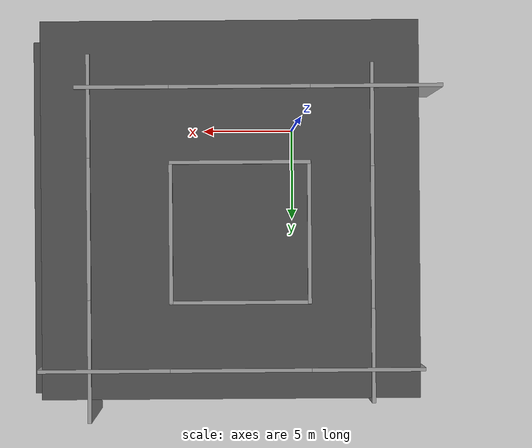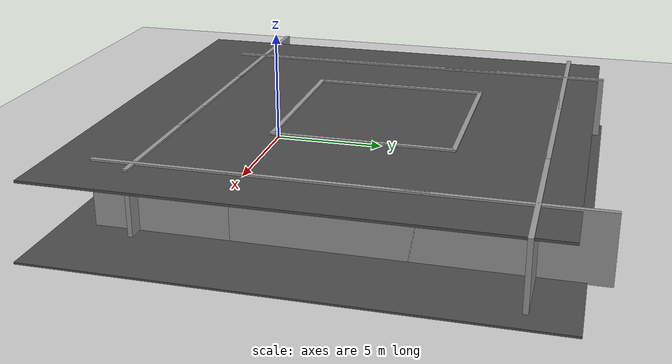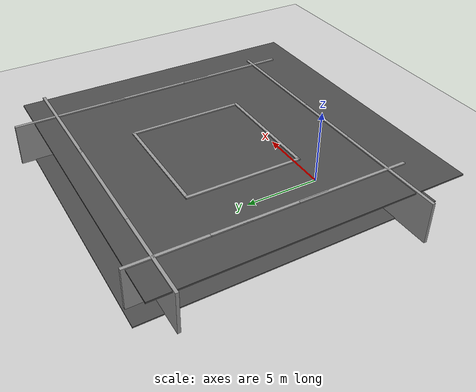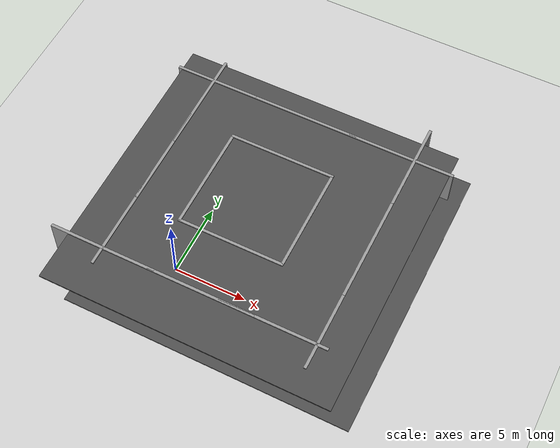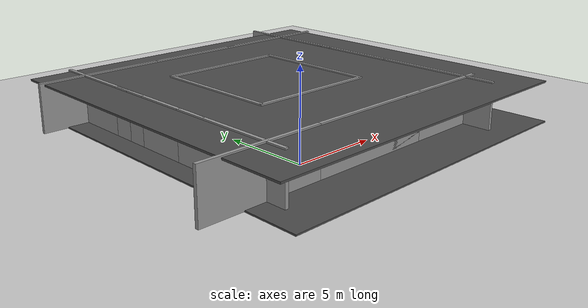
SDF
<sdf version="1.4">
 <world name="default">
  <light name="sun" type="directional">
   <pose>0 0 10 0 -0 0</pose>
   <diffuse>0.8 0.8 0.8 1</diffuse>
   <specular>0.2 0.2 0.2 1</specular>
   <attenuation>
    <range>1000</range>
    <constant>0.9</constant>
    <linear>0.01</linear>
    <quadratic>0.001</quadratic>
   </attenuation>
   <direction>-0.5 0.1 -0.9</direction>
  </light>
  <model name="ground_plane">
   <static>1</static>
   <link name="link">
    <collision name="collision">
     <geometry><plane><normal>0 0 1</normal><size>100 100</size></plane></geometry>
     <surface><friction><ode><mu>100</mu><mu2>50</mu2></ode></friction></surface>
    </collision>
    <visual name="visual">
     <cast_shadows>0</cast_shadows>
     <geometry><plane><normal>0 0 1</normal><size>100 100</size></plane></geometry>
     <material>
      <script><uri>file://media/materials/scripts/gazebo.material</uri><name>Gazebo/Grey</name></script>
     </material>
    </visual>
    <velocity_decay><linear>0</linear><angular>0</angular></velocity_decay>
   </link>
  </model>
  <physics type="ode">
   <max_step_size>0.001</max_step_size>
   <real_time_factor>1</real_time_factor>
   <real_time_update_rate>1000</real_time_update_rate>
   <gravity>0 0 -9.8</gravity>
  </physics>
  <scene><ambient>0.4 0.4 0.4 1</ambient><background>0.7 0.7 0.7 1</background><shadows>1</shadows></scene>
  <spherical_coordinates>
   <surface_model>EARTH_WGS84</surface_model>
   <latitude_deg>0</latitude_deg>
   <longitude_deg>0</longitude_deg>
   <elevation>0</elevation>
   <heading_deg>0</heading_deg>
  </spherical_coordinates>
  <model name="grey_wall">
   <static>1</static>
   <link name="link">
    <pose>0 0 1.4 0 -0 0</pose>
    <collision name="collision"><geometry><box><size>7.5 0.2 2.8</size></box></geometry></collision>
    <visual name="visual">
     <cast_shadows>0</cast_shadows>
     <geometry><box><size>7.5 0.2 2.8</size></box></geometry>
     <material>
      <script>
       <uri>model://grey_wall/materials/scripts</uri>
       <uri>model://grey_wall/materials/textures</uri>
       <name>vrc/grey_wall</name>
      </script>
     </material>
    </visual>
    <velocity_decay><linear>0</linear><angular>0</angular></velocity_decay>
   </link>
   <pose>3 -2 -0 0 -0 0</pose>
  </model>
  <model name="grey_wall_2">
   <static>1</static>
   <link name="link">
    <pose>0 0 1.4 0 -0 0</pose>
    <collision name="collision"><geometry><box><size>7.5 0.2 2.8</size></box></geometry></collision>
    <visual name="visual">
     <cast_shadows>0</cast_shadows>
     <geometry><box><size>7.5 0.2 2.8</size></box></geometry>
     <material>
      <script>
       <uri>model://grey_wall/materials/scripts</uri>
       <uri>model://grey_wall/materials/textures</uri>
       <name>vrc/grey_wall</name>
      </script>
     </material>
    </visual>
    <velocity_decay><linear>0</linear><angular>0</angular></velocity_decay>
   </link>
   <pose>3 2 0 0 -0 0</pose>
  </model>
  <model name="grey_wall_4">
   <static>1</static>
   <link name="link">
    <pose>0 0 1.4 0 -0 0</pose>
    <collision name="collision"><geometry><box><size>7.5 0.2 2.8</size></box></geometry></collision>
    <visual name="visual">
     <cast_shadows>0</cast_shadows>
     <geometry><box><size>7.5 0.2 2.8</size></box></geometry>
     <material>
      <script>
       <uri>model://grey_wall/materials/scripts</uri>
       <uri>model://grey_wall/materials/textures</uri>
       <name>vrc/grey_wall</name>
      </script>
     </material>
    </visual>
    <velocity_decay><linear>0</linear><angular>0</angular></velocity_decay>
   </link>
   <pose>11 5.49096 0 0 -0 1.5708</pose>
  </model>
  <model name="grey_wall_5">
   <static>1</static>
   <link name="link">
    <pose>0 0 1.4 0 -0 0</pose>
    <collision name="collision"><geometry><box><size>7.5 0.2 2.8</size></box></geometry></collision>
    <visual name="visual">
     <cast_shadows>0</cast_shadows>
     <geometry><box><size>7.5 0.2 2.8</size></box></geometry>
     <material>
      <script>
       <uri>model://grey_wall/materials/scripts</uri>
       <uri>model://grey_wall/materials/textures</uri>
       <name>vrc/grey_wall</name>
      </script>
     </material>
    </visual>
    <velocity_decay><linear>0</linear><angular>0</angular></velocity_decay>
   </link>
   <pose>6.66337 5.71296 0 0 -0 1.5708</pose>
  </model>
  <model name="grey_wall_6">
   <static>1</static>
   <link name="link">
    <pose>0 0 1.4 0 -0 0</pose>
    <collision name="collision"><geometry><box><size>7.5 0.2 2.8</size></box></geometry></collision>
    <visual name="visual">
     <cast_shadows>0</cast_shadows>
     <geometry><box><size>7.5 0.2 2.8</size></box></geometry>
     <material>
      <script>
       <uri>model://grey_wall/materials/scripts</uri>
       <uri>model://grey_wall/materials/textures</uri>
       <name>vrc/grey_wall</name>
      </script>
     </material>
    </visual>
    <velocity_decay><linear>0</linear><angular>0</angular></velocity_decay>
   </link>
   <pose>-0.656566 5.73224 0 0 0 -1.5708</pose>
  </model>
  <model name="grey_wall_7">
   <static>1</static>
   <link name="link">
    <pose>0 0 1.4 0 -0 0</pose>
    <collision name="collision"><geometry><box><size>7.5 0.2 2.8</size></box></geometry></collision>
    <visual name="visual">
     <cast_shadows>0</cast_shadows>
     <geometry><box><size>7.5 0.2 2.8</size></box></geometry>
     <material>
      <script>
       <uri>model://grey_wall/materials/scripts</uri>
       <uri>model://grey_wall/materials/textures</uri>
       <name>vrc/grey_wall</name>
      </script>
     </material>
    </visual>
    <velocity_decay><linear>0</linear><angular>0</angular></velocity_decay>
   </link>
   <pose>3 9.40809 0 0 -0 0</pose>
  </model>
  <model name="grey_wall_8">
   <static>1</static>
   <link name="link">
    <pose>0 0 1.4 0 -0 0</pose>
    <collision name="collision"><geometry><box><size>7.5 0.2 2.8</size></box></geometry></collision>
    <visual name="visual">
     <cast_shadows>0</cast_shadows>
     <geometry><box><size>7.5 0.2 2.8</size></box></geometry>
     <material>
      <script>
       <uri>model://grey_wall/materials/scripts</uri>
       <uri>model://grey_wall/materials/textures</uri>
       <name>vrc/grey_wall</name>
      </script>
     </material>
    </visual>
    <velocity_decay><linear>0</linear><angular>0</angular></velocity_decay>
   </link>
   <pose>3 13 0 0 -0 0</pose>
  </model>
  <model name="grey_wall_9">
   <static>1</static>
   <link name="link">
    <pose>0 0 1.4 0 -0 0</pose>
    <collision name="collision"><geometry><box><size>7.5 0.2 2.8</size></box></geometry></collision>
    <visual name="visual">
     <cast_shadows>0</cast_shadows>
     <geometry><box><size>7.5 0.2 2.8</size></box></geometry>
     <material>
      <script>
       <uri>model://grey_wall/materials/scripts</uri>
       <uri>model://grey_wall/materials/textures</uri>
       <name>vrc/grey_wall</name>
      </script>
     </material>
    </visual>
    <velocity_decay><linear>0</linear><angular>0</angular></velocity_decay>
   </link>
   <pose>-4 6 0 0 -0 1.5708</pose>
  </model>
  <model name="grey_wall_10">
   <static>1</static>
   <link name="link">
    <pose>0 0 1.4 0 -0 0</pose>
    <collision name="collision"><geometry><box><size>7.5 0.2 2.8</size></box></geometry></collision>
    <visual name="visual">
     <cast_shadows>0</cast_shadows>
     <geometry><box><size>7.5 0.2 2.8</size></box></geometry>
     <material>
      <script>
       <uri>model://grey_wall/materials/scripts</uri>
       <uri>model://grey_wall/materials/textures</uri>
       <name>vrc/grey_wall</name>
      </script>
     </material>
    </visual>
    <velocity_decay><linear>0</linear><angular>0</angular></velocity_decay>
   </link>
   <pose>-4 -2 0 0 -0 0</pose>
  </model>
  <model name="grey_wall_11">
   <static>1</static>
   <link name="link">
    <pose>0 0 1.4 0 -0 0</pose>
    <collision name="collision"><geometry><box><size>7.5 0.2 2.8</size></box></geometry></collision>
    <visual name="visual">
     <cast_shadows>0</cast_shadows>
     <geometry><box><size>7.5 0.2 2.8</size></box></geometry>
     <material>
      <script>
       <uri>model://grey_wall/materials/scripts</uri>
       <uri>model://grey_wall/materials/textures</uri>
       <name>vrc/grey_wall</name>
      </script>
     </material>
    </visual>
    <velocity_decay><linear>0</linear><angular>0</angular></velocity_decay>
   </link>
   <pose>8 -2 0 0 -0 0</pose>
  </model>
  <model name="grey_wall_12">
   <static>1</static>
   <link name="link">
    <pose>0 0 1.4 0 -0 0</pose>
    <collision name="collision"><geometry><box><size>7.5 0.2 2.8</size></box></geometry></collision>
    <visual name="visual">
     <cast_shadows>0</cast_shadows>
     <geometry><box><size>7.5 0.2 2.8</size></box></geometry>
     <material>
      <script>
       <uri>model://grey_wall/materials/scripts</uri>
       <uri>model://grey_wall/materials/textures</uri>
       <name>vrc/grey_wall</name>
      </script>
     </material>
    </visual>
    <velocity_decay><linear>0</linear><angular>0</angular></velocity_decay>
   </link>
   <pose>-3 13 0 0 -0 0</pose>
  </model>
  <model name="grey_wall_13">
   <static>1</static>
   <link name="link">
    <pose>0 0 1.4 0 -0 0</pose>
    <collision name="collision"><geometry><box><size>7.5 0.2 2.8</size></box></geometry></collision>
    <visual name="visual">
     <cast_shadows>0</cast_shadows>
     <geometry><box><size>7.5 0.2 2.8</size></box></geometry>
     <material>
      <script>
       <uri>model://grey_wall/materials/scripts</uri>
       <uri>model://grey_wall/materials/textures</uri>
       <name>vrc/grey_wall</name>
      </script>
     </material>
    </visual>
    <velocity_decay><linear>0</linear><angular>0</angular></velocity_decay>
   </link>
   <pose>10 13 0 0 -0 0</pose>
  </model>
  <model name="grey_wall_14">
   <static>1</static>
   <link name="link">
    <pose>0 0 1.4 0 -0 0</pose>
    <collision name="collision"><geometry><box><size>7.5 0.2 2.8</size></box></geometry></collision>
    <visual name="visual">
     <cast_shadows>0</cast_shadows>
     <geometry><box><size>7.5 0.2 2.8</size></box></geometry>
     <material>
      <script>
       <uri>model://grey_wall/materials/scripts</uri>
       <uri>model://grey_wall/materials/textures</uri>
       <name>vrc/grey_wall</name>
      </script>
     </material>
    </visual>
    <velocity_decay><linear>0</linear><angular>0</angular></velocity_decay>
   </link>
   <pose>11 12 0 0 0 -1.5708</pose>
  </model>
  <model name="grey_wall_15">
   <static>1</static>
   <link name="link">
    <pose>0 0 1.4 0 -0 0</pose>
    <collision name="collision"><geometry><box><size>7.5 0.2 2.8</size></box></geometry></collision>
    <visual name="visual">
     <cast_shadows>0</cast_shadows>
     <geometry><box><size>7.5 0.2 2.8</size></box></geometry>
     <material>
      <script>
       <uri>model://grey_wall/materials/scripts</uri>
       <uri>model://grey_wall/materials/textures</uri>
       <name>vrc/grey_wall</name>
      </script>
     </material>
    </visual>
    <velocity_decay><linear>0</linear><angular>0</angular></velocity_decay>
   </link>
   <pose>11 0 0 0 -0 1.5708</pose>
  </model>
  <model name="grey_wall_16">
   <static>1</static>
   <link name="link">
    <pose>0 0 1.4 0 -0 0</pose>
    <collision name="collision"><geometry><box><size>7.5 0.2 2.8</size></box></geometry></collision>
    <visual name="visual">
     <cast_shadows>0</cast_shadows>
     <geometry><box><size>7.5 0.2 2.8</size></box></geometry>
     <material>
      <script>
       <uri>model://grey_wall/materials/scripts</uri>
       <uri>model://grey_wall/materials/textures</uri>
       <name>vrc/grey_wall</name>
      </script>
     </material>
    </visual>
    <velocity_decay><linear>0</linear><angular>0</angular></velocity_decay>
   </link>
   <pose>-4 0.503822 0 0 -0 1.5708</pose>
  </model>
  <model name="grey_wall_17">
   <static>1</static>
   <link name="link">
    <pose>0 0 1.4 0 -0 0</pose>
    <collision name="collision"><geometry><box><size>7.5 0.2 2.8</size></box></geometry></collision>
    <visual name="visual">
     <cast_shadows>0</cast_shadows>
     <geometry><box><size>7.5 0.2 2.8</size></box></geometry>
     <material>
      <script>
       <uri>model://grey_wall/materials/scripts</uri>
       <uri>model://grey_wall/materials/textures</uri>
       <name>vrc/grey_wall</name>
      </script>
     </material>
    </visual>
    <velocity_decay><linear>0</linear><angular>0</angular></velocity_decay>
   </link>
   <pose>-4 11 0 0 0 -1.5708</pose>
  </model>
  <model name="asphalt_plane">
   <static>1</static>
   <link name="link">
    <collision name="collision"><geometry><box><size>20 20 0.1</size></box></geometry></collision>
    <visual name="visual">
     <cast_shadows>0</cast_shadows>
     <geometry><box><size>20 20 0.1</size></box></geometry>
     <material>
      <script>
       <uri>model://asphalt_plane/materials/scripts</uri>
       <uri>model://asphalt_plane/materials/textures</uri>
       <name>vrc/asphalt</name>
      </script>
     </material>
    </visual>
    <velocity_decay><linear>0</linear><angular>0</angular></velocity_decay>
   </link>
   <pose>4.66841 4.85995 0 0 -0 0</pose>
  </model>
  <model name="asphalt_plane_1">
   <static>1</static>
   <link name="link">
    <collision name="collision"><geometry><box><size>20 20 0.1</size></box></geometry></collision>
    <visual name="visual">
     <cast_shadows>0</cast_shadows>
     <geometry><box><size>20 20 0.1</size></box></geometry>
     <material>
      <script>
       <uri>model://asphalt_plane/materials/scripts</uri>
       <uri>model://asphalt_plane/materials/textures</uri>
       <name>vrc/asphalt</name>
      </script>
     </material>
    </visual>
    <velocity_decay><linear>0</linear><angular>0</angular></velocity_decay>
   </link>
   <pose>3.51402 4.50381 2.67265 0 -0 0</pose>
  </model>
 </world>
</sdf>
